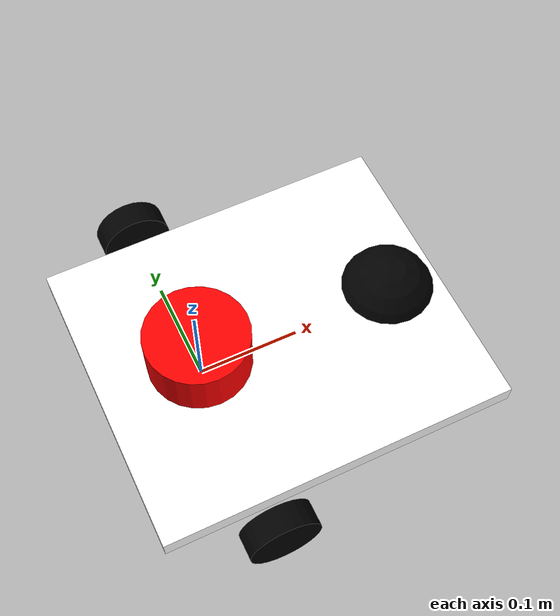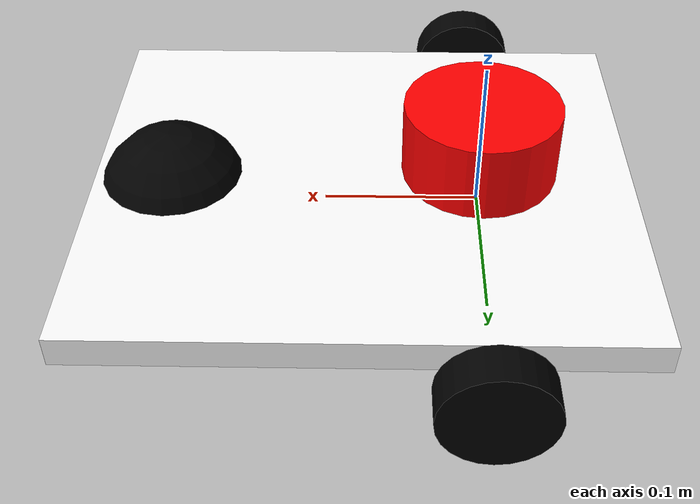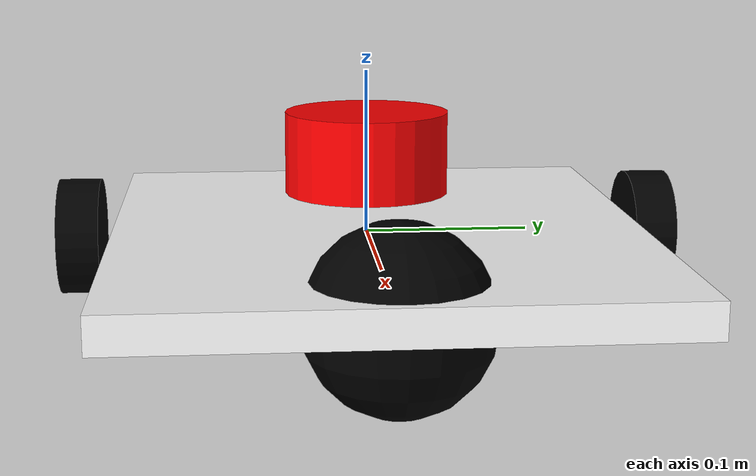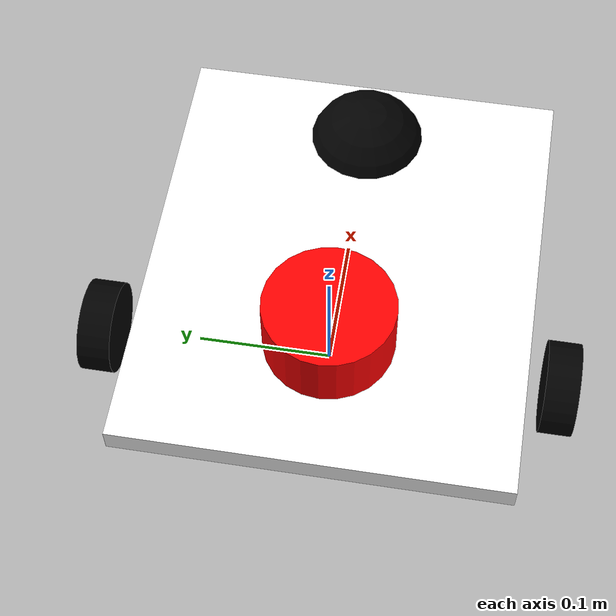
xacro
<?xml version="1.0"?>
<robot xmlns:xacro="https://www.ros.org/wiki/xacro" name="spray_paint_robot">

    <xacro:include filename="$(find capstone_description)/urdf/robot_core.xacro"/>

    <xacro:include filename="$(find capstone_description)/urdf/lidar.xacro"/>

    <gazebo>
        <plugin filename="libgazebo_ros2_control.so" name="gazebo_ros2_control">
            <parameters>$(find capstone_ignition)/params/controller.yaml</parameters>
        </plugin>
    </gazebo>

    <ros2_control name="spray_paint_robot" namespace="/">
        <plugin filename="gazebo_ros2_control/GazeboSystem" name="gazebo_ros2_control/GazeboSystem">
            <robot_sim_type>gazebo_ros2_control/DefaultRobotHWSim</robot_sim_type>
        </plugin>
        <joint name="left_wheel_joint">
            <command_interface name="velocity"/>
            <state_interface name="position"/>
            <state_interface name="velocity"/>
        </joint>
        <joint name="right_wheel_joint">
            <command_interface name="velocity"/>
            <state_interface name="position"/>
            <state_interface name="velocity"/>
        </joint>
    </ros2_control>

</robot>

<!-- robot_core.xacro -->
<robot xmlns:xacro="https://www.ros.org/wiki/xacro" >

    <xacro:include filename="inertial_macros.xacro"/>

    <material name="white">
        <color rgba="1 1 1 1"/>
    </material>

    <material name="orange">
        <color rgba="1 0.3 0.1 1"/>
    </material>

    <material name="blue">
        <color rgba="0.2 0.2 1 1"/>
    </material>

    <material name="black">
        <color rgba="0 0 0 1"/>
    </material>

    <material name="red">
        <color rgba="1 0 0 1"/>
    </material>

    <!-- BASE LINK -->
    <link name="base_link">
    </link>

    <!-- BASE FOOTPRINT -->
    <link name="base_footprint">
    </link>

    <!-- Joint to connect base_link to base_footprint -->
    <joint name="base_footprint_joint" type="fixed">
        <parent link="base_link"/>
        <child link="base_footprint"/>
        <origin xyz="0 0 0" rpy="0 0 0"/>
    </joint>

    <!-- CHASSIS LINK -->
    <joint name="chassis_joint" type="fixed">
        <parent link="base_footprint"/>
        <child link="chassis"/>
        <origin xyz="-0.1 0 0"/>
    </joint>

    <link name="chassis">
        <visual>
            <origin xyz="0.175 0 0.01"/>
            <geometry>
                <box size="0.35 0.3 0.02"/>
            </geometry>
            <material name="white"/>
        </visual>
        <collision>
            <origin xyz="0.175 0 0.01"/>
            <geometry>
                <box size="0.35 0.3 0.02"/>
            </geometry>
        </collision>
        <xacro:inertial_box mass="0.5" x="0.35" y="0.3" z="0.02">
            <origin xyz="0.175 0 0.01" rpy="0 0 0"/>
        </xacro:inertial_box>
    </link>

    <!-- LEFT WHEEL LINK -->
    <joint name="left_wheel_joint" type="continuous">
        <parent link="base_footprint"/>
        <child link="left_wheel"/>
        <origin xyz="0 0.175 0" rpy="-${pi/2} 0 0"/>
        <axis xyz="0 0 1"/>
    </joint>

    <link name="left_wheel">
        <visual>
            <geometry>
                <cylinder radius="0.035" length="0.025"/>
            </geometry>
            <material name="black"/>
        </visual>
        <collision>
            <geometry>
                <cylinder radius="0.035" length="0.025"/>
            </geometry>
        </collision>
        <xacro:inertial_cylinder mass="0.1" length="0.025" radius="0.035">
            <origin xyz="0 0 0" rpy="0 0 0"/>
        </xacro:inertial_cylinder>
    </link>

    <!-- RIGHT WHEEL LINK -->
    <joint name="right_wheel_joint" type="continuous">
        <parent link="base_footprint"/>
        <child link="right_wheel"/>
        <origin xyz="0 -0.175 0" rpy="${pi/2} 0 0"/>
        <axis xyz="0 0 -1"/>
    </joint>

    <link name="right_wheel">
        <visual>
            <geometry>
                <cylinder radius="0.035" length="0.025"/>
            </geometry>
            <material name="black"/>
        </visual>
        <collision>
            <geometry>
                <cylinder radius="0.035" length="0.025"/>
            </geometry>
        </collision>
        <xacro:inertial_cylinder mass="0.1" length="0.025" radius="0.035">
            <origin xyz="0 0 0" rpy="0 0 0"/>
        </xacro:inertial_cylinder>
    </link>

    <!-- CASTOR WHEEL LINK -->
    <joint name="castor_wheel_joint" type="fixed">
        <parent link="chassis"/>
        <child link="castor_wheel"/>
        <origin xyz="0.3 0 0"/>
    </joint>

    <link name="castor_wheel">
        <visual>
            <geometry>
                <sphere radius="0.05"/>
            </geometry>
            <material name="black"/>
        </visual>
        <collision>
            <geometry>
                <sphere radius="0.035"/>
            </geometry>
        </collision>
        <xacro:inertial_sphere mass="0.1" radius="0.035">
            <origin xyz="0 0 0" rpy="0 0 0"/>
        </xacro:inertial_sphere>
    </link>
</robot>

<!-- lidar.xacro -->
<robot xmlns:xacro="https://www.ros.org/wiki/xacro" >

    <joint name="lidar_joint" type="fixed">
        <parent link="chassis"/>
        <child link="laser_frame"/>
        <origin xyz="0.1 0 0.05" rpy="0 0 0"/>
    </joint>

    <link name="laser_frame">
        <visual>
            <geometry>
                <cylinder radius="0.05" length="0.05"/>
            </geometry>
            <material name="red"/>
        </visual>
        <collision>
            <geometry>
                <cylinder radius="0.05" length="0.05"/>
            </geometry>
        </collision>
        <xacro:inertial_cylinder mass="0.1" length="0.05" radius="0.05">
            <origin xyz="0 0 0" rpy="0 0 0"/>
        </xacro:inertial_cylinder>
    </link>

</robot>
